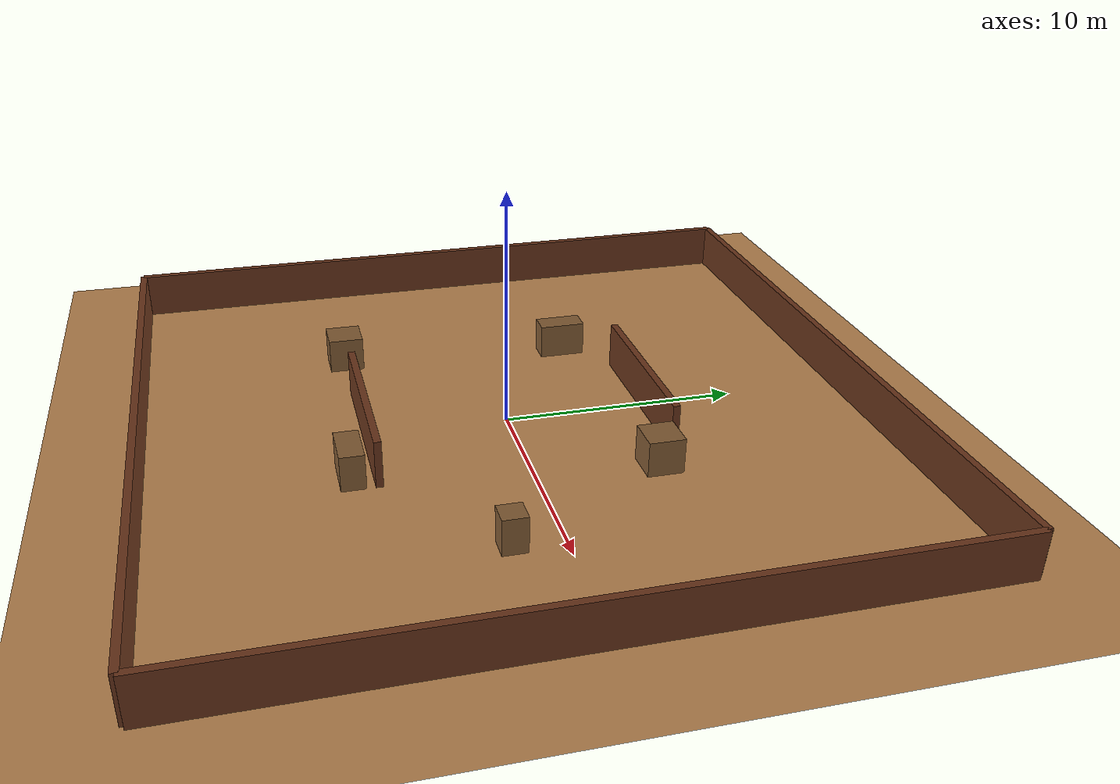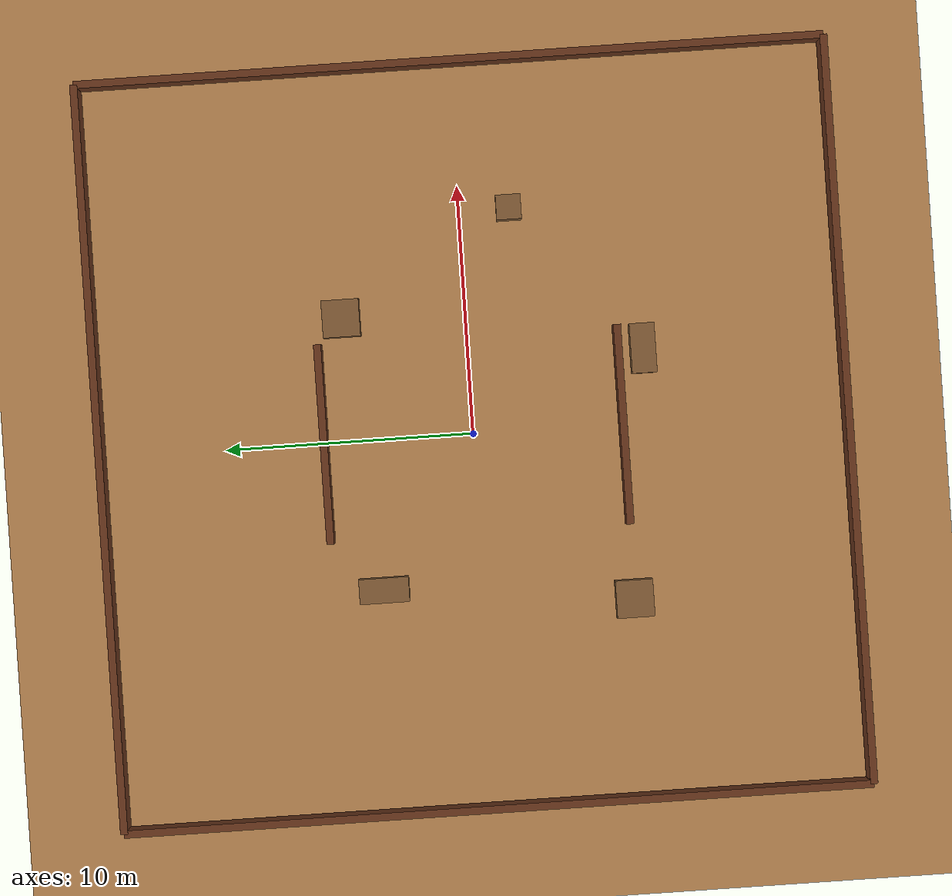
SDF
<?xml version="1.0" ?>
<sdf version="1.8">
  <world name="rover_world">

    <physics name="1ms" type="ignored">
      <max_step_size>0.001</max_step_size>
      <real_time_factor>1.0</real_time_factor>
    </physics>

    <plugin filename="ignition-gazebo-physics-system"
            name="gz::sim::systems::Physics"/>
    <plugin filename="ignition-gazebo-user-commands-system"
            name="gz::sim::systems::UserCommands"/>
    <plugin filename="ignition-gazebo-scene-broadcaster-system"
            name="gz::sim::systems::SceneBroadcaster"/>
    <plugin filename="ignition-gazebo-contact-system"
            name="gz::sim::systems::Contact"/>
    <plugin filename="ignition-gazebo-sensors-system"
            name="gz::sim::systems::Sensors">
      <render_engine>ogre2</render_engine>
    </plugin>

    <light type="directional" name="sun">
      <cast_shadows>true</cast_shadows>
      <pose>0 0 10 0 0 0</pose>
      <diffuse>0.8 0.8 0.8 1</diffuse>
      <specular>0.2 0.2 0.2 1</specular>
      <attenuation>
        <range>1000</range>
        <constant>0.9</constant>
        <linear>0.01</linear>
        <quadratic>0.001</quadratic>
      </attenuation>
      <direction>-0.5 0.1 -0.9</direction>
    </light>

    <!-- Ground -->
    <model name="ground_plane">
      <static>true</static>
      <link name="link">
        <inertial><mass>1.0</mass><inertia><ixx>0.1</ixx><ixy>0</ixy><ixz>0</ixz><iyy>0.1</iyy><iyz>0</iyz><izz>0.1</izz></inertia></inertial>
        <collision name="collision">
          <geometry><plane><normal>0 0 1</normal><size>50 50</size></plane></geometry>
        </collision>
        <visual name="visual">
          <geometry><plane><normal>0 0 1</normal><size>50 50</size></plane></geometry>
          <material>
            <ambient>0.7 0.5 0.3 1</ambient>
            <diffuse>0.7 0.5 0.3 1</diffuse>
          </material>
        </visual>
      </link>
    </model>

    <!-- Boundary walls -->
    <model name="wall_north">
      <static>true</static>
      <pose>0 15 1 0 0 0</pose>
      <link name="link">
        <inertial><mass>1.0</mass><inertia><ixx>0.1</ixx><ixy>0</ixy><ixz>0</ixz><iyy>0.1</iyy><iyz>0</iyz><izz>0.1</izz></inertia></inertial>
        <collision name="collision"><geometry><box><size>30 0.3 2</size></box></geometry></collision>
        <visual name="visual">
          <geometry><box><size>30 0.3 2</size></box></geometry>
          <material><ambient>0.4 0.2 0.1 1</ambient><diffuse>0.4 0.2 0.1 1</diffuse></material>
        </visual>
      </link>
    </model>

    <model name="wall_south">
      <static>true</static>
      <pose>0 -15 1 0 0 0</pose>
      <link name="link">
        <inertial><mass>1.0</mass><inertia><ixx>0.1</ixx><ixy>0</ixy><ixz>0</ixz><iyy>0.1</iyy><iyz>0</iyz><izz>0.1</izz></inertia></inertial>
        <collision name="collision"><geometry><box><size>30 0.3 2</size></box></geometry></collision>
        <visual name="visual">
          <geometry><box><size>30 0.3 2</size></box></geometry>
          <material><ambient>0.4 0.2 0.1 1</ambient><diffuse>0.4 0.2 0.1 1</diffuse></material>
        </visual>
      </link>
    </model>

    <model name="wall_east">
      <static>true</static>
      <pose>15 0 1 0 0 0</pose>
      <link name="link">
        <inertial><mass>1.0</mass><inertia><ixx>0.1</ixx><ixy>0</ixy><ixz>0</ixz><iyy>0.1</iyy><iyz>0</iyz><izz>0.1</izz></inertia></inertial>
        <collision name="collision"><geometry><box><size>0.3 30 2</size></box></geometry></collision>
        <visual name="visual">
          <geometry><box><size>0.3 30 2</size></box></geometry>
          <material><ambient>0.4 0.2 0.1 1</ambient><diffuse>0.4 0.2 0.1 1</diffuse></material>
        </visual>
      </link>
    </model>

    <model name="wall_west">
      <static>true</static>
      <pose>-15 0 1 0 0 0</pose>
      <link name="link">
        <inertial><mass>1.0</mass><inertia><ixx>0.1</ixx><ixy>0</ixy><ixz>0</ixz><iyy>0.1</iyy><iyz>0</iyz><izz>0.1</izz></inertia></inertial>
        <collision name="collision"><geometry><box><size>0.3 30 2</size></box></geometry></collision>
        <visual name="visual">
          <geometry><box><size>0.3 30 2</size></box></geometry>
          <material><ambient>0.4 0.2 0.1 1</ambient><diffuse>0.4 0.2 0.1 1</diffuse></material>
        </visual>
      </link>
    </model>

    <!-- Interior obstacles -->
    <model name="boulder_1">
      <static>true</static>
      <pose>5 5 0.75 0 0 0</pose>
      <link name="link">
        <inertial><mass>1.0</mass><inertia><ixx>0.1</ixx><ixy>0</ixy><ixz>0</ixz><iyy>0.1</iyy><iyz>0</iyz><izz>0.1</izz></inertia></inertial>
        <collision name="collision"><geometry><box><size>1.5 1.5 1.5</size></box></geometry></collision>
        <visual name="visual">
          <geometry><box><size>1.5 1.5 1.5</size></box></geometry>
          <material><ambient>0.5 0.35 0.2 1</ambient><diffuse>0.5 0.35 0.2 1</diffuse></material>
        </visual>
      </link>
    </model>

    <model name="boulder_2">
      <static>true</static>
      <pose>-6 4 0.75 0 0 0</pose>
      <link name="link">
        <inertial><mass>1.0</mass><inertia><ixx>0.1</ixx><ixy>0</ixy><ixz>0</ixz><iyy>0.1</iyy><iyz>0</iyz><izz>0.1</izz></inertia></inertial>
        <collision name="collision"><geometry><box><size>1 2 1.5</size></box></geometry></collision>
        <visual name="visual">
          <geometry><box><size>1 2 1.5</size></box></geometry>
          <material><ambient>0.5 0.35 0.2 1</ambient><diffuse>0.5 0.35 0.2 1</diffuse></material>
        </visual>
      </link>
    </model>

    <model name="boulder_3">
      <static>true</static>
      <pose>3 -7 0.75 0 0 0</pose>
      <link name="link">
        <inertial><mass>1.0</mass><inertia><ixx>0.1</ixx><ixy>0</ixy><ixz>0</ixz><iyy>0.1</iyy><iyz>0</iyz><izz>0.1</izz></inertia></inertial>
        <collision name="collision"><geometry><box><size>2 1 1.5</size></box></geometry></collision>
        <visual name="visual">
          <geometry><box><size>2 1 1.5</size></box></geometry>
          <material><ambient>0.5 0.35 0.2 1</ambient><diffuse>0.5 0.35 0.2 1</diffuse></material>
        </visual>
      </link>
    </model>

    <model name="boulder_4">
      <static>true</static>
      <pose>-7 -6 0.75 0 0 0</pose>
      <link name="link">
        <inertial><mass>1.0</mass><inertia><ixx>0.1</ixx><ixy>0</ixy><ixz>0</ixz><iyy>0.1</iyy><iyz>0</iyz><izz>0.1</izz></inertia></inertial>
        <collision name="collision"><geometry><box><size>1.5 1.5 1.5</size></box></geometry></collision>
        <visual name="visual">
          <geometry><box><size>1.5 1.5 1.5</size></box></geometry>
          <material><ambient>0.5 0.35 0.2 1</ambient><diffuse>0.5 0.35 0.2 1</diffuse></material>
        </visual>
      </link>
    </model>

    <model name="boulder_5">
      <static>true</static>
      <pose>9 -2 0.75 0 0 0</pose>
      <link name="link">
        <inertial><mass>1.0</mass><inertia><ixx>0.1</ixx><ixy>0</ixy><ixz>0</ixz><iyy>0.1</iyy><iyz>0</iyz><izz>0.1</izz></inertia></inertial>
        <collision name="collision"><geometry><box><size>1 1 1.5</size></box></geometry></collision>
        <visual name="visual">
          <geometry><box><size>1 1 1.5</size></box></geometry>
          <material><ambient>0.5 0.35 0.2 1</ambient><diffuse>0.5 0.35 0.2 1</diffuse></material>
        </visual>
      </link>
    </model>

    <model name="wall_interior_1">
      <static>true</static>
      <pose>0 6 1 0 0 0</pose>
      <link name="link">
        <inertial><mass>1.0</mass><inertia><ixx>0.1</ixx><ixy>0</ixy><ixz>0</ixz><iyy>0.1</iyy><iyz>0</iyz><izz>0.1</izz></inertia></inertial>
        <collision name="collision"><geometry><box><size>8 0.3 2</size></box></geometry></collision>
        <visual name="visual">
          <geometry><box><size>8 0.3 2</size></box></geometry>
          <material><ambient>0.4 0.2 0.1 1</ambient><diffuse>0.4 0.2 0.1 1</diffuse></material>
        </visual>
      </link>
    </model>

    <model name="wall_interior_2">
      <static>true</static>
      <pose>0 -6 1 0 0 0</pose>
      <link name="link">
        <inertial><mass>1.0</mass><inertia><ixx>0.1</ixx><ixy>0</ixy><ixz>0</ixz><iyy>0.1</iyy><iyz>0</iyz><izz>0.1</izz></inertia></inertial>
        <collision name="collision"><geometry><box><size>8 0.3 2</size></box></geometry></collision>
        <visual name="visual">
          <geometry><box><size>8 0.3 2</size></box></geometry>
          <material><ambient>0.4 0.2 0.1 1</ambient><diffuse>0.4 0.2 0.1 1</diffuse></material>
        </visual>
      </link>
    </model>

  </world>
</sdf>
